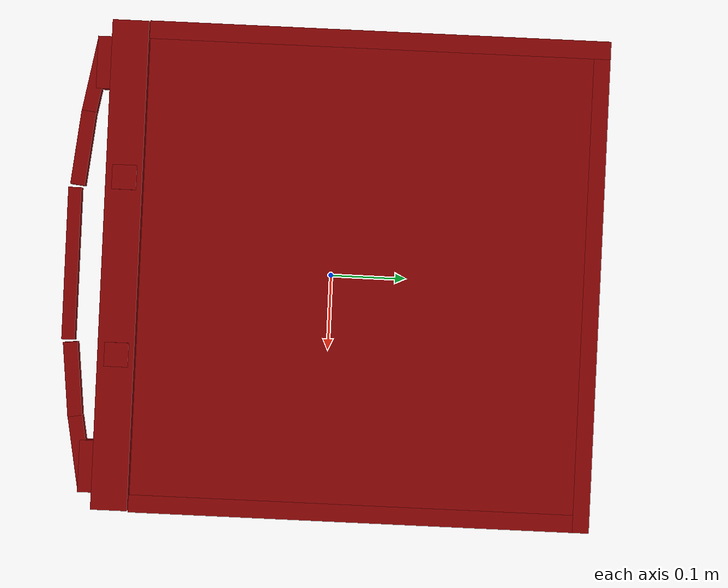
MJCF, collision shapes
<?xml version='1.0' encoding='UTF-8'?>
<mujoco model="model">
  <option timestep="0.002" gravity="0.0 0.0 -9.81"/>
  <compiler angle="radian"/>
  <asset>
    <mesh file="visuals/button_lock.obj" name="button_lock_vis"/>
    <mesh file="visuals/button_power.obj" name="button_power_vis"/>
    <mesh file="visuals/Body001.obj" name="Body001_vis"/>
    <mesh file="visuals/door.obj" name="door_vis"/>
    <mesh file="visuals/rack0.obj" name="rack0_vis"/>
    <mesh file="visuals/rack1.obj" name="rack1_vis"/>
    <texture file="visuals/T_BC001.png" name="Body001_material" type="2d"/>
    <material name="Body001_material" rgba="1 1 1 1.0" texture="Body001_material" shininess="0.5" specular="2"/>
    <texture file="visuals/T_BC001.png" name="door_material" type="2d"/>
    <material name="door_material" rgba="1 1 1 1.0" texture="door_material" shininess="0.5" specular="1"/>
    <texture file="visuals/T_BC001.png" name="button_lock_material" type="2d"/>
    <material name="button_lock_material" rgba="1 1 1 1.0" texture="button_lock_material" shininess="0.5" specular="0.3103448502657381"/>
    <texture file="visuals/T_BC001.png" name="button_power_material" type="2d"/>
    <material name="button_power_material" rgba="1 1 1 1.0" texture="button_power_material" shininess="0.5" specular="0.3103448502657381"/>
    <texture file="visuals/T_BC001.png" name="rack0_material" type="2d"/>
    <material name="rack0_material" rgba="1 1 1 1.0" texture="rack0_material" shininess="0.5" specular="5"/>
    <texture file="visuals/T_BC001.png" name="rack1_material" type="2d"/>
    <material name="rack1_material" rgba="1 1 1 1.0" texture="rack1_material" shininess="0.5" specular="5"/>
  </asset>
  <default>
    <default class="visual">
      <geom conaffinity="0" contype="0" group="1" type="mesh"/>
    </default>
    <default class="collision">
      <geom group="0" rgba="0.5 0 0 0.5"/>
    </default>
    <default class="spawn">
      <geom group="0" rgba="1 1 1 0.5" contype="0" conaffinity="0"/>
      <site group="0" rgba="1 1 1 0.5"/>
    </default>
    <default class="region">
      <geom group="1" conaffinity="0" contype="0" rgba="0 1 0 0"/>
    </default>
  </default>
  <worldbody>
    <body>
      <body name="object">
        <geom mesh="Body001_vis" type="mesh" solimp="0.998 0.998 0.001" solref="0.001 1" friction="0.95 0.3 0.1" class="visual" material="Body001_material"/>
        <geom class="collision" type="box" pos="-0.29385448 0.04795910 0.01078863" size="0.011028495617210865 0.28593289852142334 0.41513338685035706" quat="1.0 0.0 0.0 0.0"/>
        <geom class="collision" type="box" pos="0.00000000 0.32355949 0.01078863" size="0.3048830032348633 0.010332516394555569 0.41513338685035706" quat="1.0 0.0 0.0 0.0"/>
        <geom class="collision" type="box" pos="0.29393199 0.04795910 0.01078863" size="0.010951023548841476 0.28593289852142334 0.41513338685035706" quat="1.0 0.0 0.0 0.0"/>
        <geom class="collision" type="box" pos="-0.00032615 0.04789525 0.41237903" size="0.30455687642097473 0.2847980260848999 0.013542995788156986" quat="1.0 0.0 0.0 0.0"/>
        <geom class="collision" type="box" pos="0.00000000 0.04797990 -0.36594299" size="0.3048830032348633 0.28591206669807434 0.06488998979330063" quat="1.0 0.0 0.0 0.0"/>
        <geom class="collision" type="box" pos="-0.26694348 0.02800469 0.16957833" size="0.013690252788364887 0.24464596807956696 0.008770952001214027" quat="1.0 0.0 0.0 0.0"/>
        <geom class="collision" type="box" pos="-0.26694348 0.02800469 -0.03508457" size="0.013690252788364887 0.24464596807956696 0.008828075602650642" quat="1.0 0.0 0.0 0.0"/>
        <geom class="collision" type="box" pos="0.26785895 0.02800469 -0.03508903" size="0.014318948611617088 0.24464596807956696 0.008755650371313095" quat="1.0 0.0 0.0 0.0"/>
        <geom class="collision" type="box" pos="0.26784396 0.02800469 0.16954607" size="0.014333953149616718 0.24464596807956696 0.008682467974722385" quat="1.0 0.0 0.0 0.0"/>
        <body name="door">
          <joint axis="1.0 0.0 0.0" pos="-0.00029792 -0.28502491316223144 -0.32761464168746945" limited="true" name="door_joint" range="0.0 0.5735987755982988" type="hinge" damping="1" frictionloss="10" armature="1" stiffness="2"/>
          <geom mesh="door_vis" type="mesh" solimp="0.998 0.998 0.001" solref="0.001 1" friction="0.95 0.3 0.1" class="visual" material="door_material"/>
          <geom class="collision" type="box" pos="-0.00029792 -0.26245025 0.04487642" size="0.3045286536216736 0.022574663162231445 0.3724910616874695" quat="1.0 0.0 0.0 0.0" name="door_main"/>
          <geom class="collision" type="box" pos="0.25268525 -0.28915432 0.36040613" size="0.03264765068888664 0.015286942012608051 0.019917838275432587" quat="1.0 0.0 0.0 0.0"/>
          <geom class="collision" type="box" pos="0.23648444 -0.30350402 0.36040613" size="0.04660938307642937 0.008954321034252644 0.019917838275432587" quat="0.9960660338401794 0.0 0.0 0.08861380815505981" name="door_handle_2"/>
          <geom class="collision" type="box" pos="0.14469214 -0.31690973 0.36040613" size="0.04660938307642937 0.008954321034252644 0.019917838275432587" quat="0.9985488653182983 0.0 0.0 0.053853072226047516" name="door_handle_1"/>
          <geom class="collision" type="box" pos="-0.25296777 -0.28915432 0.36040613" size="0.03264765068888664 0.015286942012608051 0.019917838275432587" quat="1.0 0.0 0.0 0.0"/>
          <geom class="collision" type="box" pos="-0.14497466 -0.31690973 0.36040613" size="0.04660938307642937 0.008954321034252644 0.019917838275432587" quat="0.9985488653182983 0.0 -0.0 -0.05385307967662811" name="door_handle_3"/>
          <geom class="collision" type="box" pos="-0.23676696 -0.30350402 0.36040613" size="0.04660938307642937 0.008954321034252644 0.019917838275432587" quat="0.9960660338401794 0.0 -0.0 -0.08861380815505981" name="door_handle_4"/>
          <geom class="collision" type="box" pos="0.00000000 -0.32496014 0.36017066" size="0.09534624218940735 0.008044227957725525 0.020093193277716637" quat="1.0 0.0 0.0 0.0" name="door_handle_main"/>
          <body name="button_lock">
            <joint axis="0.0 0.0 -1.0" pos="0.11035138 -0.26109636 0.42535612" limited="true" name="button_lock_joint" range="0.0 0.003" type="slide" damping="1" frictionloss="1" armature=".01" springref="-1" stiffness="4"/>
            <geom mesh="button_lock_vis" type="mesh" solimp="0.998 0.998 0.001" solref="0.001 1" friction="0.95 0.3 0.1" class="visual" material="button_lock_material"/>
            <geom class="collision" type="box" pos="0.11038326 -0.26102230 0.42738575" size="0.014971550554037094 0.014971550554037094 0.0023767335806041956" quat="1.0 0.0 0.0 0.0"/>
          </body>
          <body name="button_power">
            <joint axis="0.0 0.0 -1.0" pos="-0.10970563 -0.26109636 0.42535612" limited="true" name="button_power_joint" range="0.0 0.003" type="slide" damping="1" frictionloss="1" armature=".01" springref="-1" stiffness="4"/>
            <geom mesh="button_power_vis" type="mesh" solimp="0.998 0.998 0.001" solref="0.001 1" friction="0.95 0.3 0.1" class="visual" material="button_power_material"/>
            <geom class="collision" type="box" pos="-0.10968564 -0.26128665 0.42738575" size="0.015258826315402985 0.015258826315402985 0.0024842736311256886" quat="1.0 0.0 0.0 0.0"/>
          </body>
        </body>
        <body name="rack0">
          <geom class="region" name="reg_rack0" type="box" pos="0.0007700949999999984 0.008494034999999997 -0.026210554999999996" size="0.224113255 0.217021735 0.095134155"/>
          <joint axis="0.0 -1.0 0.0" pos="-0.00022877 0.00809320 -0.07165676" limited="true" name="rack0_joint" range="0.0 0.15" type="slide" damping="1" frictionloss="1" armature=".01" stiffness="0.05"/>
          <geom mesh="rack0_vis" type="mesh" solimp="0.998 0.998 0.001" solref="0.001 1" friction="0.95 0.3 0.1" class="visual" material="rack0_material"/>
          <geom class="collision" type="box" pos="0.05763232 0.00820210 -0.08894791" size="0.0013794676633551717 0.2230924367904663 0.0375714972615242" quat="1.0 0.0 0.0 0.0"/>
          <geom class="collision" type="box" pos="0.00429015 0.00820210 -0.08894791" size="0.0013794676633551717 0.2230924367904663 0.0375714972615242" quat="1.0 0.0 0.0 0.0"/>
          <geom class="collision" type="box" pos="-0.04886823 0.00820210 -0.08894791" size="0.0013794676633551717 0.2230924367904663 0.0375714972615242" quat="1.0 0.0 0.0 0.0"/>
          <geom class="collision" type="box" pos="-0.10213131 0.00820210 -0.08894791" size="0.0013794676633551717 0.2230924367904663 0.0375714972615242" quat="1.0 0.0 0.0 0.0"/>
          <geom class="collision" type="box" pos="0.00167512 0.00856502 -0.12930068" size="0.23578967154026031 0.22286783158779144 0.0027813150081783533" quat="1.0 0.0 0.0 0.0"/>
          <geom class="collision" type="box" pos="0.00167512 -0.22016543 -0.07260579" size="0.23578967154026031 0.006263718008995056 0.05947621911764145" quat="1.0 0.0 0.0 0.0"/>
          <geom class="collision" type="box" pos="0.00167512 0.23728427 -0.07260579" size="0.23578967154026031 0.0057849157601594925 0.05947621911764145" quat="1.0 0.0 0.0 0.0"/>
          <geom class="collision" type="box" pos="0.24012201 0.00792401 -0.06982447" size="0.01024447102099657 0.23437932133674622 0.05669494345784187" quat="1.0 0.0 0.0 0.0"/>
          <geom class="collision" type="box" pos="0.11060286 0.00820210 -0.08894791" size="0.0013794676633551717 0.2230924367904663 0.0375714972615242" quat="1.0 0.0 0.0 0.0"/>
          <geom class="collision" type="box" pos="-0.23958014 0.00792401 -0.06982447" size="0.011015108786523342 0.23437932133674622 0.05669494345784187" quat="1.0 0.0 0.0 0.0"/>
        </body>
        <body name="rack1">
          <geom class="region" name="reg_rack1" type="box" pos="0.0007700949999999984 0.008831914999999996 0.23931354999999999" size="0.224113255 0.217359615 0.15487379"/>
          <joint axis="0.0 -1.0 0.0" pos="0.00175696 0.00809320 0.13431427" limited="true" name="rack1_joint" range="0.0 0.25" type="slide" damping="1" frictionloss="1" armature=".01" stiffness="0.05"/>
          <geom mesh="rack1_vis" type="mesh" solimp="0.998 0.998 0.001" solref="0.001 1" friction="0.95 0.3 0.1" class="visual" material="rack1_material"/>
          <geom class="collision" type="box" pos="-0.23958014 0.00792401 0.13617311" size="0.011015119031071663 0.23437932133674622 0.05652185156941414" quat="1.0 0.0 0.0 0.0"/>
          <geom class="collision" type="box" pos="0.24159229 0.00792401 0.13617311" size="0.009712559171020985 0.23437932133674622 0.05652184784412384" quat="1.0 0.0 0.0 0.0"/>
          <geom class="collision" type="box" pos="0.00167512 0.23728427 0.13321869" size="0.23578967154026031 0.0057849157601594925 0.05947621911764145" quat="1.0 0.0 0.0 0.0"/>
          <geom class="collision" type="box" pos="0.00167512 -0.22016543 0.13321869" size="0.23578967154026031 0.006263718008995056 0.05947621911764145" quat="1.0 0.0 0.0 0.0"/>
          <geom class="collision" type="box" pos="0.00167512 0.00856502 0.07669687" size="0.23578967154026031 0.22286783158779144 0.0029543882701545954" quat="1.0 0.0 0.0 0.0"/>
          <geom class="collision" type="box" pos="-0.10017980 0.00820210 0.11704967" size="0.0013794676633551717 0.2230924367904663 0.037398409098386765" quat="1.0 0.0 0.0 0.0"/>
          <geom class="collision" type="box" pos="-0.04691672 0.00820210 0.11704967" size="0.0013794676633551717 0.2230924367904663 0.037398409098386765" quat="1.0 0.0 0.0 0.0"/>
          <geom class="collision" type="box" pos="0.00624166 0.00820210 0.11704967" size="0.0013794676633551717 0.2230924367904663 0.037398409098386765" quat="1.0 0.0 0.0 0.0"/>
          <geom class="collision" type="box" pos="0.05958382 0.00820210 0.11704967" size="0.0013794676633551717 0.2230924367904663 0.037398409098386765" quat="1.0 0.0 0.0 0.0"/>
          <geom class="collision" type="box" pos="0.11255437 0.00820210 0.11704967" size="0.0013794676633551717 0.2230924367904663 0.037398409098386765" quat="1.0 0.0 0.0 0.0"/>
        </body>
        <geom class="region" name="reg_int" type="box" pos="0.003671884999999986 0.038229774999999994 0.049098699999999995" size="0.250942155 0.270048325 0.34437494"/>
        <geom class="region" name="reg_main" type="box" pos="0.0 0.02443352500000001 -1.64999999996418e-07" size="0.305883 0.310458465 0.431832805"/>
      </body>
    </body>
  </worldbody>
  <actuator>
    <motor name="door_joint_actuator" joint="door_joint" gear="50"/>
    <motor name="rack0_joint_actuator" joint="rack0_joint" gear="50"/>
    <motor name="rack1_joint_actuator" joint="rack1_joint" gear="50"/>
    <motor name="button_lock_joint_actuator" joint="button_lock_joint" gear="0.5"/>
    <motor name="button_power_joint_actuator" joint="button_power_joint" gear="0.5"/>
  </actuator>
</mujoco>
